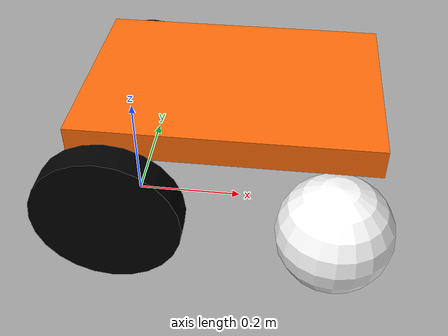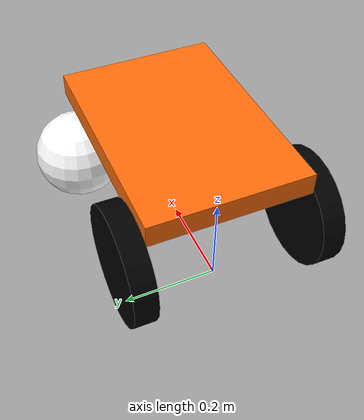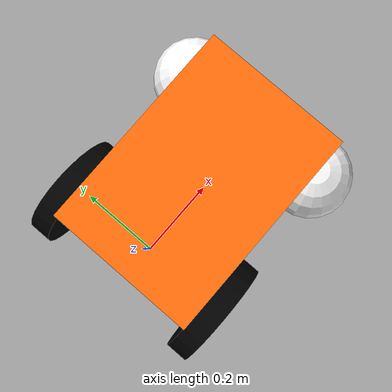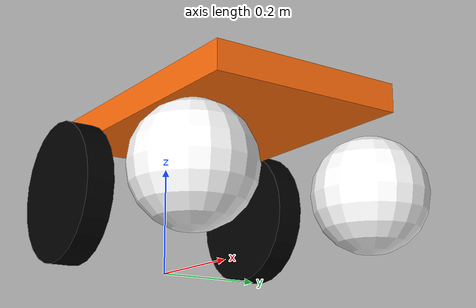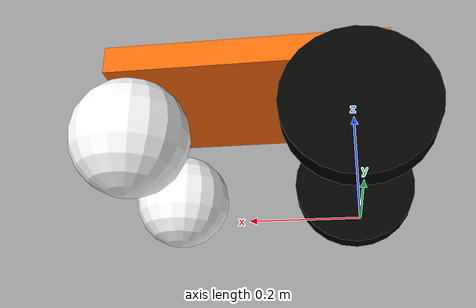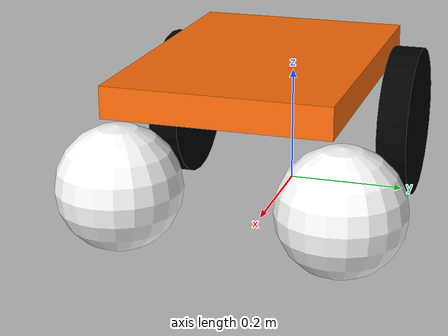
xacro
<?xml version="1.0"?>
<!-- based on dumbot -->
<!-- LINK src/dumbot_bringup/urdf/roboclaw.urdf.xacro -->
<!-- Basic differential drive mobile base -->
<robot xmlns:xacro="http://www.ros.org/wiki/xacro" name="dumbot">

  <!--arg name="roboclaw_description_path" default="$(dirname)/roboclaw_description.urdf.xacro"/-->
  <!--xacro:include filename="$(var roboclaw_description_path)"/-->

  <xacro:include filename="roboclaw_description.urdf.xacro" />

  <!-- Import Rviz colors -->
  <xacro:include filename="roboclaw.materials.xacro" />

  <!-- Import dumbot ros2_control description -->
  <xacro:include filename="roboclaw.ros2_control.xacro" />

  <xacro:dumbot_base />

  <xacro:diffbot_ros2_control
    name="roboclaw_controller" />

</robot>

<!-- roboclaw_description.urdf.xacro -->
<!-- based on dumbot -->
<!-- LINK src/dumbot_bringup/urdf/roboclaw_description.urdf.xacro
-->
<robot xmlns:xacro="http://www.ros.org/wiki/xacro">

  <xacro:macro name="dumbot_base">

  <!-- Constants for robot dimensions -->
  <xacro:property name="PI" value="3.1415926535897931"/>
  <xacro:property name="base_mass" value="0.3" /> <!-- TODO: Fixme -->
  <xacro:property name="base_width" value="0.350" />
  <xacro:property name="base_length" value="0.5" />
  <xacro:property name="base_height" value="0.05" />
  <xacro:property name="wheel_mass" value="0.3" /> <!-- TODO: Fixme -->
  <xacro:property name="wheel_len" value="0.050" />
  <xacro:property name="wheel_radius" value="0.127" />
  <xacro:property name="caster_wheel_mass" value="0.1" /> <!-- TODO: Fixme -->
  <xacro:property name="caster_wheel_radius" value="0.1" />

  <link name="base_footprint" />

  <joint name="base_joint" type="fixed">
    <parent link="base_footprint"/>
    <child link="base_link"/>
    <origin xyz="0 0 ${wheel_radius}" rpy="0 0 0"/>
  </joint>

  <link name="base_link">
    <collision>
      <origin xyz="${3*base_length/8} 0 ${wheel_radius}" rpy="0 0 0"/>
      <geometry>
        <box size="${base_length} ${base_width} ${base_height}"/>
      </geometry>
    </collision>

    <visual>
      <origin xyz="${3*base_length/8} 0 ${wheel_radius}" rpy="0 0 0"/>
      <geometry>
        <box size="${base_length} ${base_width} ${base_height}"/>
      </geometry>
      <material name="orange"/>
    </visual>

    <inertial>
      <origin xyz="0 0 0" rpy="0 0 0"/>
      <mass value="${base_mass}"/>
      <inertia
        ixx="${base_mass / 12.0 * (base_length*base_length + base_height*base_height)}" ixy="0.0" ixz="0.0"
        iyy="${base_mass / 12.0 * (base_height*base_height + base_width*base_width)}" iyz="0.0"
        izz="${base_mass / 12.0 * (base_width*base_width + base_length*base_length)}"/>
      </inertial>
    </link>

    <joint name="left_wheel_joint" type="continuous">
      <parent link="base_link"/>
      <child link="left_wheel"/>
      <origin xyz="0 ${-base_width/2 - wheel_len/2} 0" rpy="0 0 0"/>
      <axis xyz="0 1 0"/>
      <dynamics damping="0.2"/>
    </joint>

    <link name="left_wheel">
      <collision>
        <origin xyz="0 0 0" rpy="${PI/2} 0 0"/>
        <geometry>
          <cylinder length="${wheel_len}" radius="${wheel_radius}"/>
        </geometry>
      </collision>

      <visual>
        <origin xyz="0 0 0" rpy="${PI/2} 0 0"/>
        <geometry>
          <cylinder length="${wheel_len}" radius="${wheel_radius}"/>
        </geometry>
        <material name="black"/>
      </visual>

      <inertial>
        <origin xyz="0 0 0" rpy="${PI/2} 0 0"/>
        <mass value="${wheel_mass}"/>
        <inertia
          ixx="${wheel_mass / 12.0 * (3*wheel_radius + wheel_len*wheel_len)}" ixy="0.0" ixz="0.0"
          iyy="${wheel_mass / 12.0 * wheel_radius*wheel_radius}" iyz="0.0"
          izz="${wheel_mass / 12.0 * wheel_radius*wheel_radius}"/>
      </inertial>
    </link>

    <joint name="right_wheel_joint" type="continuous">
      <parent link="base_link"/>
      <child link="right_wheel"/>
      <origin xyz="0 ${base_width/2 + wheel_len/2} 0" rpy="0 0 0"/>
      <axis xyz="0 1 0"/>
      <dynamics damping="0.2"/>
    </joint>

    <link name="right_wheel">
      <collision>
        <origin xyz="0 0 0" rpy="${PI/2} 0 0"/>
        <geometry>
          <cylinder length="${wheel_len}" radius="${wheel_radius}"/>
        </geometry>
      </collision>

      <visual>
        <origin xyz="0 0 0" rpy="${PI/2} 0 0"/>
        <geometry>
          <cylinder length="${wheel_len}" radius="${wheel_radius}"/>
        </geometry>
        <material name="black"/>
      </visual>

      <inertial>
        <origin xyz="0 0 0" rpy="${PI/2} 0 0"/>
        <mass value="${wheel_mass}"/>
        <inertia
          ixx="${wheel_mass / 12.0 * (3*wheel_radius + wheel_len*wheel_len)}" ixy="0.0" ixz="0.0"
          iyy="${wheel_mass / 12.0 * wheel_radius*wheel_radius}" iyz="0.0"
          izz="${wheel_mass / 12.0 * wheel_radius*wheel_radius}"/>
        </inertial>
      </link>

    <joint name="caster_left_wheel_joint" type="fixed">
      <parent link="base_link"/>
      <child link="caster_left_wheel"/>
      <origin xyz="${3*base_length/4} ${base_width/2} ${caster_wheel_radius - wheel_radius}" rpy="0 0 0"/>
    </joint>

    <link name="caster_left_wheel">
      <collision>
        <origin xyz="0 0 0" rpy="0 0 0"/>
        <geometry>
          <sphere radius="${caster_wheel_radius}"/>
        </geometry>
      </collision>

      <visual>
        <origin xyz="0 0 0" rpy="0 0 0"/>
        <geometry>
          <sphere radius="${caster_wheel_radius}"/>
        </geometry>
        <material name="white"/>
      </visual>

      <inertial>
        <origin xyz="0 0 0" rpy="0 0 0"/>
        <mass value="${caster_wheel_mass}"/>
        <inertia
          ixx="${caster_wheel_mass * 0.4 * (caster_wheel_radius * caster_wheel_radius)}" ixy="0.0" ixz="0.0"
          iyy="${caster_wheel_mass * 0.4 * (caster_wheel_radius * caster_wheel_radius)}" iyz="0.0"
          izz="${caster_wheel_mass * 0.4 * (caster_wheel_radius * caster_wheel_radius)}"/>
        </inertial>
      </link>

    <joint name="caster_right_wheel_joint" type="fixed">
      <parent link="base_link"/>
      <child link="caster_right_wheel"/>
      <origin xyz="${3*base_length/4} -${base_width/2} ${caster_wheel_radius - wheel_radius}" rpy="0 0 0"/>
    </joint>

    <link name="caster_right_wheel">
      <collision>
        <origin xyz="0 0 0" rpy="0 0 0"/>
        <geometry>
          <sphere radius="${caster_wheel_radius}"/>
        </geometry>
      </collision>

      <visual>
        <origin xyz="0 0 0" rpy="0 0 0"/>
        <geometry>
          <sphere radius="${caster_wheel_radius}"/>
        </geometry>
        <material name="white"/>
      </visual>

      <inertial>
        <origin xyz="0 0 0" rpy="0 0 0"/>
        <mass value="${caster_wheel_mass}"/>
        <inertia
          ixx="${caster_wheel_mass * 0.4 * (caster_wheel_radius * caster_wheel_radius)}" ixy="0.0" ixz="0.0"
          iyy="${caster_wheel_mass * 0.4 * (caster_wheel_radius * caster_wheel_radius)}" iyz="0.0"
          izz="${caster_wheel_mass * 0.4 * (caster_wheel_radius * caster_wheel_radius)}"/>
        </inertial>
      </link>

  </xacro:macro>

</robot>

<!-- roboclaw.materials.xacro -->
<!--
Copied from ROS1 example:
https://github.com/ros-simulation/gazebo_ros_demos/blob/kinetic-devel/rrbot_description/urdf/materials.xacro
-->
<!-- based on dumbot -->
<!-- LINK src/dumbot_bringup/urdf/roboclaw.materials.xacro -->
<robot>

  <material name="black">
    <color rgba="0.0 0.0 0.0 1.0"/>
  </material>

  <material name="blue">
    <color rgba="0.0 0.0 0.8 1.0"/>
  </material>

  <material name="green">
    <color rgba="0.0 0.8 0.0 1.0"/>
  </material>

  <material name="grey">
    <color rgba="0.2 0.2 0.2 1.0"/>
  </material>

  <material name="orange">
    <color rgba="${255/255} ${108/255} ${10/255} 1.0"/>
  </material>

  <material name="brown">
    <color rgba="${222/255} ${207/255} ${195/255} 1.0"/>
  </material>

  <material name="red">
    <color rgba="0.8 0.0 0.0 1.0"/>
  </material>

  <material name="white">
    <color rgba="1.0 1.0 1.0 1.0"/>
  </material>

</robot>
